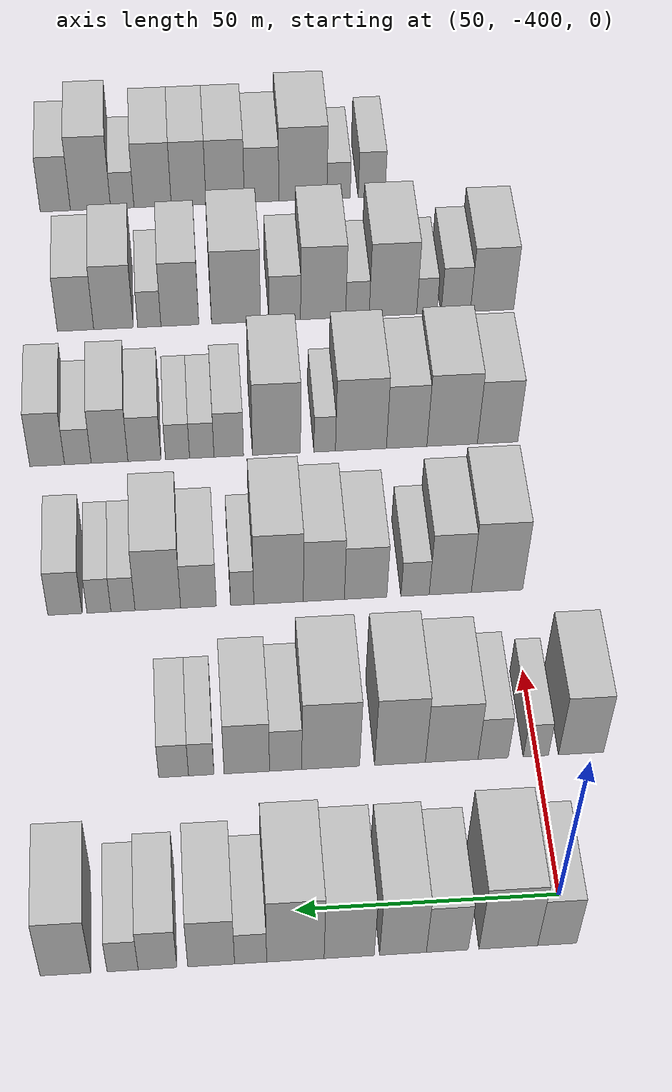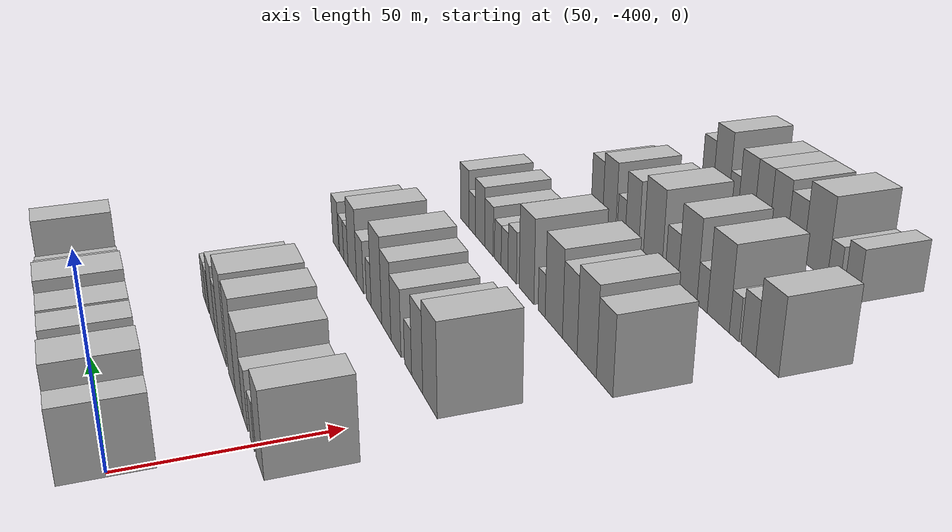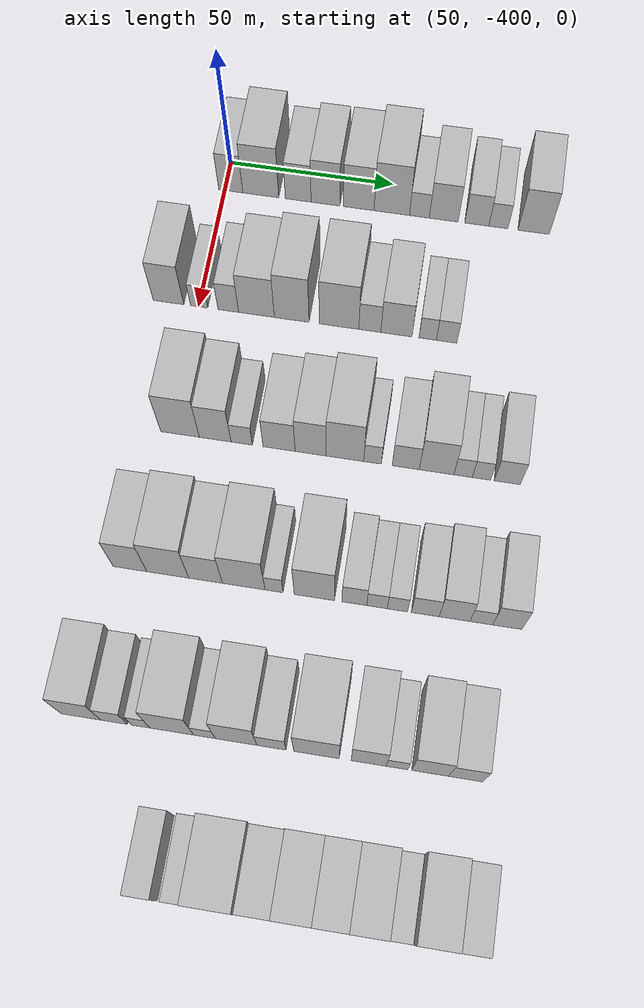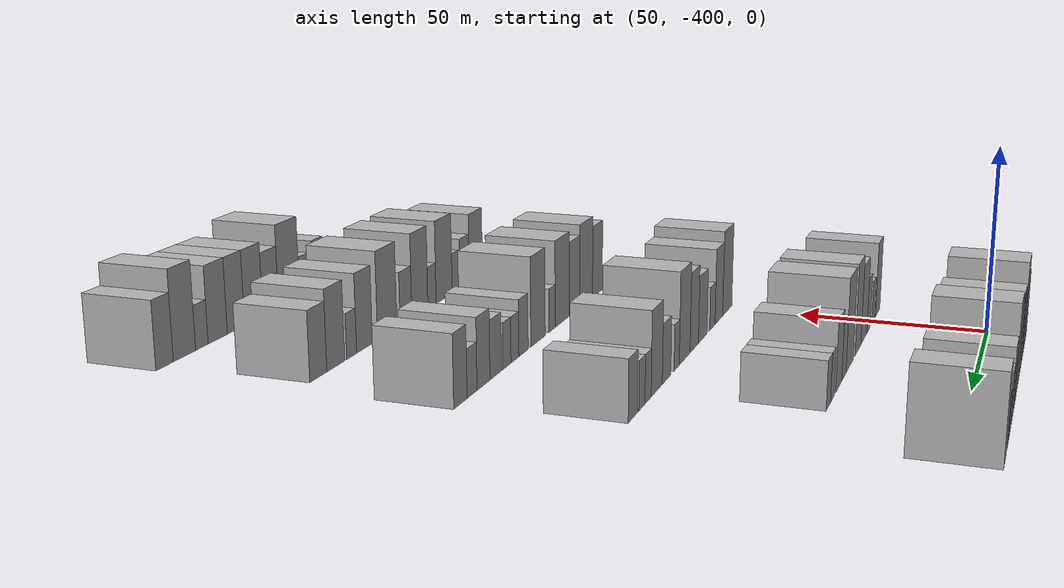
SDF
<sdf version="1.6">
 <world name="default">
  <model name="building_27">
   <static>1</static>
   <pose>50.0000 -398.0976 0 0.000000 0.000000 0.000000</pose>
   <link name="link">
    <pose>0 0 9.00 0 0 0</pose>
    <collision name="collision"><geometry><box><size>20.0000 7.3101 18.0000</size></box></geometry></collision>
    <visual name="visual">
     <cast_shadows>0</cast_shadows>
     <geometry><box><size>20.0000 7.3101 18.0000</size></box></geometry>
     <material>
      <script>
       <uri>model://HANNAS_wall/materials/scripts</uri>
       <uri>model://HANNAS_wall/materials/textures</uri>
       <name>vrc/HANNAS_wall</name>
      </script>
     </material>
    </visual>
   </link>
  </model>
  <model name="building_28">
   <static>1</static>
   <pose>50.0000 -388.9482 0 0.000000 0.000000 0.000000</pose>
   <link name="link">
    <pose>0 0 12.00 0 0 0</pose>
    <collision name="collision"><geometry><box><size>20.0000 10.9887 24.0000</size></box></geometry></collision>
    <visual name="visual">
     <cast_shadows>0</cast_shadows>
     <geometry><box><size>20.0000 10.9887 24.0000</size></box></geometry>
     <material>
      <script>
       <uri>model://HANNAS_wall/materials/scripts</uri>
       <uri>model://HANNAS_wall/materials/textures</uri>
       <name>vrc/HANNAS_wall</name>
      </script>
     </material>
    </visual>
   </link>
  </model>
  <model name="building_29">
   <static>1</static>
   <pose>50.0000 -377.5386 0 0.000000 0.000000 0.000000</pose>
   <link name="link">
    <pose>0 0 9.00 0 0 0</pose>
    <collision name="collision"><geometry><box><size>20.0000 7.8305 18.0000</size></box></geometry></collision>
    <visual name="visual">
     <cast_shadows>0</cast_shadows>
     <geometry><box><size>20.0000 7.8305 18.0000</size></box></geometry>
     <material>
      <script>
       <uri>model://HANNAS_wall/materials/scripts</uri>
       <uri>model://HANNAS_wall/materials/textures</uri>
       <name>vrc/HANNAS_wall</name>
      </script>
     </material>
    </visual>
   </link>
  </model>
  <model name="building_30">
   <static>1</static>
   <pose>50.0000 -369.2636 0 0.000000 0.000000 0.000000</pose>
   <link name="link">
    <pose>0 0 10.50 0 0 0</pose>
    <collision name="collision"><geometry><box><size>20.0000 8.7196 21.0000</size></box></geometry></collision>
    <visual name="visual">
     <cast_shadows>0</cast_shadows>
     <geometry><box><size>20.0000 8.7196 21.0000</size></box></geometry>
     <material>
      <script>
       <uri>model://HANNAS_wall/materials/scripts</uri>
       <uri>model://HANNAS_wall/materials/textures</uri>
       <name>vrc/HANNAS_wall</name>
      </script>
     </material>
    </visual>
   </link>
  </model>
  <model name="building_31">
   <static>1</static>
   <pose>50.0000 -359.2427 0 0.000000 0.000000 0.000000</pose>
   <link name="link">
    <pose>0 0 10.50 0 0 0</pose>
    <collision name="collision"><geometry><box><size>20.0000 9.3222 21.0000</size></box></geometry></collision>
    <visual name="visual">
     <cast_shadows>0</cast_shadows>
     <geometry><box><size>20.0000 9.3222 21.0000</size></box></geometry>
     <material>
      <script>
       <uri>model://HANNAS_wall/materials/scripts</uri>
       <uri>model://HANNAS_wall/materials/textures</uri>
       <name>vrc/HANNAS_wall</name>
      </script>
     </material>
    </visual>
   </link>
  </model>
  <model name="building_32">
   <static>1</static>
   <pose>50.0000 -349.2509 0 0.000000 0.000000 0.000000</pose>
   <link name="link">
    <pose>0 0 12.00 0 0 0</pose>
    <collision name="collision"><geometry><box><size>20.0000 10.6614 24.0000</size></box></geometry></collision>
    <visual name="visual">
     <cast_shadows>0</cast_shadows>
     <geometry><box><size>20.0000 10.6614 24.0000</size></box></geometry>
     <material>
      <script>
       <uri>model://HANNAS_wall/materials/scripts</uri>
       <uri>model://HANNAS_wall/materials/textures</uri>
       <name>vrc/HANNAS_wall</name>
      </script>
     </material>
    </visual>
   </link>
  </model>
  <model name="building_33">
   <static>1</static>
   <pose>50.0000 -340.9512 0 0.000000 0.000000 0.000000</pose>
   <link name="link">
    <pose>0 0 6.00 0 0 0</pose>
    <collision name="collision"><geometry><box><size>20.0000 5.9378 12.0000</size></box></geometry></collision>
    <visual name="visual">
     <cast_shadows>0</cast_shadows>
     <geometry><box><size>20.0000 5.9378 12.0000</size></box></geometry>
     <material>
      <script>
       <uri>model://HANNAS_wall/materials/scripts</uri>
       <uri>model://HANNAS_wall/materials/textures</uri>
       <name>vrc/HANNAS_wall</name>
      </script>
     </material>
    </visual>
   </link>
  </model>
  <model name="building_34">
   <static>1</static>
   <pose>50.0000 -333.6593 0 0.000000 0.000000 0.000000</pose>
   <link name="link">
    <pose>0 0 9.00 0 0 0</pose>
    <collision name="collision"><geometry><box><size>20.0000 8.6461 18.0000</size></box></geometry></collision>
    <visual name="visual">
     <cast_shadows>0</cast_shadows>
     <geometry><box><size>20.0000 8.6461 18.0000</size></box></geometry>
     <material>
      <script>
       <uri>model://HANNAS_wall/materials/scripts</uri>
       <uri>model://HANNAS_wall/materials/textures</uri>
       <name>vrc/HANNAS_wall</name>
      </script>
     </material>
    </visual>
   </link>
  </model>
  <model name="building_35">
   <static>1</static>
   <pose>50.0000 -323.7536 0 0.000000 0.000000 0.000000</pose>
   <link name="link">
    <pose>0 0 7.50 0 0 0</pose>
    <collision name="collision"><geometry><box><size>20.0000 7.1653 15.0000</size></box></geometry></collision>
    <visual name="visual">
     <cast_shadows>0</cast_shadows>
     <geometry><box><size>20.0000 7.1653 15.0000</size></box></geometry>
     <material>
      <script>
       <uri>model://HANNAS_wall/materials/scripts</uri>
       <uri>model://HANNAS_wall/materials/textures</uri>
       <name>vrc/HANNAS_wall</name>
      </script>
     </material>
    </visual>
   </link>
  </model>
  <model name="building_36">
   <static>1</static>
   <pose>50.0000 -317.3098 0 0.000000 0.000000 0.000000</pose>
   <link name="link">
    <pose>0 0 6.00 0 0 0</pose>
    <collision name="collision"><geometry><box><size>20.0000 5.7222 12.0000</size></box></geometry></collision>
    <visual name="visual">
     <cast_shadows>0</cast_shadows>
     <geometry><box><size>20.0000 5.7222 12.0000</size></box></geometry>
     <material>
      <script>
       <uri>model://HANNAS_wall/materials/scripts</uri>
       <uri>model://HANNAS_wall/materials/textures</uri>
       <name>vrc/HANNAS_wall</name>
      </script>
     </material>
    </visual>
   </link>
  </model>
  <model name="building_37">
   <static>1</static>
   <pose>50.0000 -306.7887 0 0.000000 0.000000 0.000000</pose>
   <link name="link">
    <pose>0 0 10.50 0 0 0</pose>
    <collision name="collision"><geometry><box><size>20.0000 9.3200 21.0000</size></box></geometry></collision>
    <visual name="visual">
     <cast_shadows>0</cast_shadows>
     <geometry><box><size>20.0000 9.3200 21.0000</size></box></geometry>
     <material>
      <script>
       <uri>model://HANNAS_wall/materials/scripts</uri>
       <uri>model://HANNAS_wall/materials/textures</uri>
       <name>vrc/HANNAS_wall</name>
      </script>
     </material>
    </visual>
   </link>
  </model>
  <model name="building_169">
   <static>1</static>
   <pose>90.0000 -408.8623 0 0.000000 0.000000 0.000000</pose>
   <link name="link">
    <pose>0 0 10.50 0 0 0</pose>
    <collision name="collision"><geometry><box><size>20.0000 9.0377 21.0000</size></box></geometry></collision>
    <visual name="visual">
     <cast_shadows>0</cast_shadows>
     <geometry><box><size>20.0000 9.0377 21.0000</size></box></geometry>
     <material>
      <script>
       <uri>model://HANNAS_wall/materials/scripts</uri>
       <uri>model://HANNAS_wall/materials/textures</uri>
       <name>vrc/HANNAS_wall</name>
      </script>
     </material>
    </visual>
   </link>
  </model>
  <model name="building_170">
   <static>1</static>
   <pose>90.0000 -399.8133 0 0.000000 0.000000 0.000000</pose>
   <link name="link">
    <pose>0 0 6.00 0 0 0</pose>
    <collision name="collision"><geometry><box><size>20.0000 5.0603 12.0000</size></box></geometry></collision>
    <visual name="visual">
     <cast_shadows>0</cast_shadows>
     <geometry><box><size>20.0000 5.0603 12.0000</size></box></geometry>
     <material>
      <script>
       <uri>model://HANNAS_wall/materials/scripts</uri>
       <uri>model://HANNAS_wall/materials/textures</uri>
       <name>vrc/HANNAS_wall</name>
      </script>
     </material>
    </visual>
   </link>
  </model>
  <model name="building_171">
   <static>1</static>
   <pose>90.0000 -391.2618 0 0.000000 0.000000 0.000000</pose>
   <link name="link">
    <pose>0 0 7.50 0 0 0</pose>
    <collision name="collision"><geometry><box><size>20.0000 6.0428 15.0000</size></box></geometry></collision>
    <visual name="visual">
     <cast_shadows>0</cast_shadows>
     <geometry><box><size>20.0000 6.0428 15.0000</size></box></geometry>
     <material>
      <script>
       <uri>model://HANNAS_wall/materials/scripts</uri>
       <uri>model://HANNAS_wall/materials/textures</uri>
       <name>vrc/HANNAS_wall</name>
      </script>
     </material>
    </visual>
   </link>
  </model>
  <model name="building_172">
   <static>1</static>
   <pose>90.0000 -382.9959 0 0.000000 0.000000 0.000000</pose>
   <link name="link">
    <pose>0 0 10.50 0 0 0</pose>
    <collision name="collision"><geometry><box><size>20.0000 10.4890 21.0000</size></box></geometry></collision>
    <visual name="visual">
     <cast_shadows>0</cast_shadows>
     <geometry><box><size>20.0000 10.4890 21.0000</size></box></geometry>
     <material>
      <script>
       <uri>model://HANNAS_wall/materials/scripts</uri>
       <uri>model://HANNAS_wall/materials/textures</uri>
       <name>vrc/HANNAS_wall</name>
      </script>
     </material>
    </visual>
   </link>
  </model>
  <model name="building_173">
   <static>1</static>
   <pose>90.0000 -372.7026 0 0.000000 0.000000 0.000000</pose>
   <link name="link">
    <pose>0 0 12.00 0 0 0</pose>
    <collision name="collision"><geometry><box><size>20.0000 10.0975 24.0000</size></box></geometry></collision>
    <visual name="visual">
     <cast_shadows>0</cast_shadows>
     <geometry><box><size>20.0000 10.0975 24.0000</size></box></geometry>
     <material>
      <script>
       <uri>model://HANNAS_wall/materials/scripts</uri>
       <uri>model://HANNAS_wall/materials/textures</uri>
       <name>vrc/HANNAS_wall</name>
      </script>
     </material>
    </visual>
   </link>
  </model>
  <model name="building_174">
   <static>1</static>
   <pose>90.0000 -358.9233 0 0.000000 0.000000 0.000000</pose>
   <link name="link">
    <pose>0 0 12.00 0 0 0</pose>
    <collision name="collision"><geometry><box><size>20.0000 11.4611 24.0000</size></box></geometry></collision>
    <visual name="visual">
     <cast_shadows>0</cast_shadows>
     <geometry><box><size>20.0000 11.4611 24.0000</size></box></geometry>
     <material>
      <script>
       <uri>model://HANNAS_wall/materials/scripts</uri>
       <uri>model://HANNAS_wall/materials/textures</uri>
       <name>vrc/HANNAS_wall</name>
      </script>
     </material>
    </visual>
   </link>
  </model>
  <model name="building_175">
   <static>1</static>
   <pose>90.0000 -349.9924 0 0.000000 0.000000 0.000000</pose>
   <link name="link">
    <pose>0 0 7.50 0 0 0</pose>
    <collision name="collision"><geometry><box><size>20.0000 6.4006 15.0000</size></box></geometry></collision>
    <visual name="visual">
     <cast_shadows>0</cast_shadows>
     <geometry><box><size>20.0000 6.4006 15.0000</size></box></geometry>
     <material>
      <script>
       <uri>model://HANNAS_wall/materials/scripts</uri>
       <uri>model://HANNAS_wall/materials/textures</uri>
       <name>vrc/HANNAS_wall</name>
      </script>
     </material>
    </visual>
   </link>
  </model>
  <model name="building_176">
   <static>1</static>
   <pose>90.0000 -342.3059 0 0.000000 0.000000 0.000000</pose>
   <link name="link">
    <pose>0 0 9.00 0 0 0</pose>
    <collision name="collision"><geometry><box><size>20.0000 8.9725 18.0000</size></box></geometry></collision>
    <visual name="visual">
     <cast_shadows>0</cast_shadows>
     <geometry><box><size>20.0000 8.9725 18.0000</size></box></geometry>
     <material>
      <script>
       <uri>model://HANNAS_wall/materials/scripts</uri>
       <uri>model://HANNAS_wall/materials/textures</uri>
       <name>vrc/HANNAS_wall</name>
      </script>
     </material>
    </visual>
   </link>
  </model>
  <model name="building_177">
   <static>1</static>
   <pose>90.0000 -333.3131 0 0.000000 0.000000 0.000000</pose>
   <link name="link">
    <pose>0 0 6.00 0 0 0</pose>
    <collision name="collision"><geometry><box><size>20.0000 5.0131 12.0000</size></box></geometry></collision>
    <visual name="visual">
     <cast_shadows>0</cast_shadows>
     <geometry><box><size>20.0000 5.0131 12.0000</size></box></geometry>
     <material>
      <script>
       <uri>model://HANNAS_wall/materials/scripts</uri>
       <uri>model://HANNAS_wall/materials/textures</uri>
       <name>vrc/HANNAS_wall</name>
      </script>
     </material>
    </visual>
   </link>
  </model>
  <model name="building_178">
   <static>1</static>
   <pose>90.0000 -327.8650 0 0.000000 0.000000 0.000000</pose>
   <link name="link">
    <pose>0 0 6.00 0 0 0</pose>
    <collision name="collision"><geometry><box><size>20.0000 5.8831 12.0000</size></box></geometry></collision>
    <visual name="visual">
     <cast_shadows>0</cast_shadows>
     <geometry><box><size>20.0000 5.8831 12.0000</size></box></geometry>
     <material>
      <script>
       <uri>model://HANNAS_wall/materials/scripts</uri>
       <uri>model://HANNAS_wall/materials/textures</uri>
       <name>vrc/HANNAS_wall</name>
      </script>
     </material>
    </visual>
   </link>
  </model>
  <model name="building_306">
   <static>1</static>
   <pose>130.0000 -397.2481 0 0.000000 0.000000 0.000000</pose>
   <link name="link">
    <pose>0 0 12.00 0 0 0</pose>
    <collision name="collision"><geometry><box><size>20.0000 10.9089 24.0000</size></box></geometry></collision>
    <visual name="visual">
     <cast_shadows>0</cast_shadows>
     <geometry><box><size>20.0000 10.9089 24.0000</size></box></geometry>
     <material>
      <script>
       <uri>model://HANNAS_wall/materials/scripts</uri>
       <uri>model://HANNAS_wall/materials/textures</uri>
       <name>vrc/HANNAS_wall</name>
      </script>
     </material>
    </visual>
   </link>
  </model>
  <model name="building_307">
   <static>1</static>
   <pose>130.0000 -387.3245 0 0.000000 0.000000 0.000000</pose>
   <link name="link">
    <pose>0 0 10.50 0 0 0</pose>
    <collision name="collision"><geometry><box><size>20.0000 8.9382 21.0000</size></box></geometry></collision>
    <visual name="visual">
     <cast_shadows>0</cast_shadows>
     <geometry><box><size>20.0000 8.9382 21.0000</size></box></geometry>
     <material>
      <script>
       <uri>model://HANNAS_wall/materials/scripts</uri>
       <uri>model://HANNAS_wall/materials/textures</uri>
       <name>vrc/HANNAS_wall</name>
      </script>
     </material>
    </visual>
   </link>
  </model>
  <model name="building_308">
   <static>1</static>
   <pose>130.0000 -379.8751 0 0.000000 0.000000 0.000000</pose>
   <link name="link">
    <pose>0 0 6.00 0 0 0</pose>
    <collision name="collision"><geometry><box><size>20.0000 5.9608 12.0000</size></box></geometry></collision>
    <visual name="visual">
     <cast_shadows>0</cast_shadows>
     <geometry><box><size>20.0000 5.9608 12.0000</size></box></geometry>
     <material>
      <script>
       <uri>model://HANNAS_wall/materials/scripts</uri>
       <uri>model://HANNAS_wall/materials/textures</uri>
       <name>vrc/HANNAS_wall</name>
      </script>
     </material>
    </visual>
   </link>
  </model>
  <model name="building_309">
   <static>1</static>
   <pose>130.0000 -369.4111 0 0.000000 0.000000 0.000000</pose>
   <link name="link">
    <pose>0 0 9.00 0 0 0</pose>
    <collision name="collision"><geometry><box><size>20.0000 8.9671 18.0000</size></box></geometry></collision>
    <visual name="visual">
     <cast_shadows>0</cast_shadows>
     <geometry><box><size>20.0000 8.9671 18.0000</size></box></geometry>
     <material>
      <script>
       <uri>model://HANNAS_wall/materials/scripts</uri>
       <uri>model://HANNAS_wall/materials/textures</uri>
       <name>vrc/HANNAS_wall</name>
      </script>
     </material>
    </visual>
   </link>
  </model>
  <model name="building_310">
   <static>1</static>
   <pose>130.0000 -360.5963 0 0.000000 0.000000 0.000000</pose>
   <link name="link">
    <pose>0 0 10.50 0 0 0</pose>
    <collision name="collision"><geometry><box><size>20.0000 8.6624 21.0000</size></box></geometry></collision>
    <visual name="visual">
     <cast_shadows>0</cast_shadows>
     <geometry><box><size>20.0000 8.6624 21.0000</size></box></geometry>
     <material>
      <script>
       <uri>model://HANNAS_wall/materials/scripts</uri>
       <uri>model://HANNAS_wall/materials/textures</uri>
       <name>vrc/HANNAS_wall</name>
      </script>
     </material>
    </visual>
   </link>
  </model>
  <model name="building_311">
   <static>1</static>
   <pose>130.0000 -351.0551 0 0.000000 0.000000 0.000000</pose>
   <link name="link">
    <pose>0 0 12.00 0 0 0</pose>
    <collision name="collision"><geometry><box><size>20.0000 10.4200 24.0000</size></box></geometry></collision>
    <visual name="visual">
     <cast_shadows>0</cast_shadows>
     <geometry><box><size>20.0000 10.4200 24.0000</size></box></geometry>
     <material>
      <script>
       <uri>model://HANNAS_wall/materials/scripts</uri>
       <uri>model://HANNAS_wall/materials/textures</uri>
       <name>vrc/HANNAS_wall</name>
      </script>
     </material>
    </visual>
   </link>
  </model>
  <model name="building_312">
   <static>1</static>
   <pose>130.0000 -343.4131 0 0.000000 0.000000 0.000000</pose>
   <link name="link">
    <pose>0 0 6.00 0 0 0</pose>
    <collision name="collision"><geometry><box><size>20.0000 4.8642 12.0000</size></box></geometry></collision>
    <visual name="visual">
     <cast_shadows>0</cast_shadows>
     <geometry><box><size>20.0000 4.8642 12.0000</size></box></geometry>
     <material>
      <script>
       <uri>model://HANNAS_wall/materials/scripts</uri>
       <uri>model://HANNAS_wall/materials/textures</uri>
       <name>vrc/HANNAS_wall</name>
      </script>
     </material>
    </visual>
   </link>
  </model>
  <model name="building_313">
   <static>1</static>
   <pose>130.0000 -334.2361 0 0.000000 0.000000 0.000000</pose>
   <link name="link">
    <pose>0 0 7.50 0 0 0</pose>
    <collision name="collision"><geometry><box><size>20.0000 7.4897 15.0000</size></box></geometry></collision>
    <visual name="visual">
     <cast_shadows>0</cast_shadows>
     <geometry><box><size>20.0000 7.4897 15.0000</size></box></geometry>
     <material>
      <script>
       <uri>model://HANNAS_wall/materials/scripts</uri>
       <uri>model://HANNAS_wall/materials/textures</uri>
       <name>vrc/HANNAS_wall</name>
      </script>
     </material>
    </visual>
   </link>
  </model>
  <model name="building_314">
   <static>1</static>
   <pose>130.0000 -325.7147 0 0.000000 0.000000 0.000000</pose>
   <link name="link">
    <pose>0 0 10.50 0 0 0</pose>
    <collision name="collision"><geometry><box><size>20.0000 9.5531 21.0000</size></box></geometry></collision>
    <visual name="visual">
     <cast_shadows>0</cast_shadows>
     <geometry><box><size>20.0000 9.5531 21.0000</size></box></geometry>
     <material>
      <script>
       <uri>model://HANNAS_wall/materials/scripts</uri>
       <uri>model://HANNAS_wall/materials/textures</uri>
       <name>vrc/HANNAS_wall</name>
      </script>
     </material>
    </visual>
   </link>
  </model>
  <model name="building_315">
   <static>1</static>
   <pose>130.0000 -318.4172 0 0.000000 0.000000 0.000000</pose>
   <link name="link">
    <pose>0 0 6.00 0 0 0</pose>
    <collision name="collision"><geometry><box><size>20.0000 5.0419 12.0000</size></box></geometry></collision>
    <visual name="visual">
     <cast_shadows>0</cast_shadows>
     <geometry><box><size>20.0000 5.0419 12.0000</size></box></geometry>
     <material>
      <script>
       <uri>model://HANNAS_wall/materials/scripts</uri>
       <uri>model://HANNAS_wall/materials/textures</uri>
       <name>vrc/HANNAS_wall</name>
      </script>
     </material>
    </visual>
   </link>
  </model>
  <model name="building_316">
   <static>1</static>
   <pose>130.0000 -313.3897 0 0.000000 0.000000 0.000000</pose>
   <link name="link">
    <pose>0 0 6.00 0 0 0</pose>
    <collision name="collision"><geometry><box><size>20.0000 5.0132 12.0000</size></box></geometry></collision>
    <visual name="visual">
     <cast_shadows>0</cast_shadows>
     <geometry><box><size>20.0000 5.0132 12.0000</size></box></geometry>
     <material>
      <script>
       <uri>model://HANNAS_wall/materials/scripts</uri>
       <uri>model://HANNAS_wall/materials/textures</uri>
       <name>vrc/HANNAS_wall</name>
      </script>
     </material>
    </visual>
   </link>
  </model>
  <model name="building_317">
   <static>1</static>
   <pose>130.0000 -306.3028 0 0.000000 0.000000 0.000000</pose>
   <link name="link">
    <pose>0 0 7.50 0 0 0</pose>
    <collision name="collision"><geometry><box><size>20.0000 7.1605 15.0000</size></box></geometry></collision>
    <visual name="visual">
     <cast_shadows>0</cast_shadows>
     <geometry><box><size>20.0000 7.1605 15.0000</size></box></geometry>
     <material>
      <script>
       <uri>model://HANNAS_wall/materials/scripts</uri>
       <uri>model://HANNAS_wall/materials/textures</uri>
       <name>vrc/HANNAS_wall</name>
      </script>
     </material>
    </visual>
   </link>
  </model>
  <model name="building_444">
   <static>1</static>
   <pose>170.0000 -402.5948 0 0.000000 0.000000 0.000000</pose>
   <link name="link">
    <pose>0 0 10.50 0 0 0</pose>
    <collision name="collision"><geometry><box><size>20.0000 9.1106 21.0000</size></box></geometry></collision>
    <visual name="visual">
     <cast_shadows>0</cast_shadows>
     <geometry><box><size>20.0000 9.1106 21.0000</size></box></geometry>
     <material>
      <script>
       <uri>model://HANNAS_wall/materials/scripts</uri>
       <uri>model://HANNAS_wall/materials/textures</uri>
       <name>vrc/HANNAS_wall</name>
      </script>
     </material>
    </visual>
   </link>
  </model>
  <model name="building_445">
   <static>1</static>
   <pose>170.0000 -392.3725 0 0.000000 0.000000 0.000000</pose>
   <link name="link">
    <pose>0 0 12.00 0 0 0</pose>
    <collision name="collision"><geometry><box><size>20.0000 11.3341 24.0000</size></box></geometry></collision>
    <visual name="visual">
     <cast_shadows>0</cast_shadows>
     <geometry><box><size>20.0000 11.3341 24.0000</size></box></geometry>
     <material>
      <script>
       <uri>model://HANNAS_wall/materials/scripts</uri>
       <uri>model://HANNAS_wall/materials/textures</uri>
       <name>vrc/HANNAS_wall</name>
      </script>
     </material>
    </visual>
   </link>
  </model>
  <model name="building_446">
   <static>1</static>
   <pose>170.0000 -382.1659 0 0.000000 0.000000 0.000000</pose>
   <link name="link">
    <pose>0 0 10.50 0 0 0</pose>
    <collision name="collision"><geometry><box><size>20.0000 9.0791 21.0000</size></box></geometry></collision>
    <visual name="visual">
     <cast_shadows>0</cast_shadows>
     <geometry><box><size>20.0000 9.0791 21.0000</size></box></geometry>
     <material>
      <script>
       <uri>model://HANNAS_wall/materials/scripts</uri>
       <uri>model://HANNAS_wall/materials/textures</uri>
       <name>vrc/HANNAS_wall</name>
      </script>
     </material>
    </visual>
   </link>
  </model>
  <model name="building_447">
   <static>1</static>
   <pose>170.0000 -371.9200 0 0.000000 0.000000 0.000000</pose>
   <link name="link">
    <pose>0 0 12.00 0 0 0</pose>
    <collision name="collision"><geometry><box><size>20.0000 11.4127 24.0000</size></box></geometry></collision>
    <visual name="visual">
     <cast_shadows>0</cast_shadows>
     <geometry><box><size>20.0000 11.4127 24.0000</size></box></geometry>
     <material>
      <script>
       <uri>model://HANNAS_wall/materials/scripts</uri>
       <uri>model://HANNAS_wall/materials/textures</uri>
       <name>vrc/HANNAS_wall</name>
      </script>
     </material>
    </visual>
   </link>
  </model>
  <model name="building_448">
   <static>1</static>
   <pose>170.0000 -363.8134 0 0.000000 0.000000 0.000000</pose>
   <link name="link">
    <pose>0 0 6.00 0 0 0</pose>
    <collision name="collision"><geometry><box><size>20.0000 4.8006 12.0000</size></box></geometry></collision>
    <visual name="visual">
     <cast_shadows>0</cast_shadows>
     <geometry><box><size>20.0000 4.8006 12.0000</size></box></geometry>
     <material>
      <script>
       <uri>model://HANNAS_wall/materials/scripts</uri>
       <uri>model://HANNAS_wall/materials/textures</uri>
       <name>vrc/HANNAS_wall</name>
      </script>
     </material>
    </visual>
   </link>
  </model>
  <model name="building_449">
   <static>1</static>
   <pose>170.0000 -353.0618 0 0.000000 0.000000 0.000000</pose>
   <link name="link">
    <pose>0 0 12.00 0 0 0</pose>
    <collision name="collision"><geometry><box><size>20.0000 10.7026 24.0000</size></box></geometry></collision>
    <visual name="visual">
     <cast_shadows>0</cast_shadows>
     <geometry><box><size>20.0000 10.7026 24.0000</size></box></geometry>
     <material>
      <script>
       <uri>model://HANNAS_wall/materials/scripts</uri>
       <uri>model://HANNAS_wall/materials/textures</uri>
       <name>vrc/HANNAS_wall</name>
      </script>
     </material>
    </visual>
   </link>
  </model>
  <model name="building_450">
   <static>1</static>
   <pose>170.0000 -342.4193 0 0.000000 0.000000 0.000000</pose>
   <link name="link">
    <pose>0 0 7.50 0 0 0</pose>
    <collision name="collision"><geometry><box><size>20.0000 6.5823 15.0000</size></box></geometry></collision>
    <visual name="visual">
     <cast_shadows>0</cast_shadows>
     <geometry><box><size>20.0000 6.5823 15.0000</size></box></geometry>
     <material>
      <script>
       <uri>model://HANNAS_wall/materials/scripts</uri>
       <uri>model://HANNAS_wall/materials/textures</uri>
       <name>vrc/HANNAS_wall</name>
      </script>
     </material>
    </visual>
   </link>
  </model>
  <model name="building_451">
   <static>1</static>
   <pose>170.0000 -336.4174 0 0.000000 0.000000 0.000000</pose>
   <link name="link">
    <pose>0 0 6.00 0 0 0</pose>
    <collision name="collision"><geometry><box><size>20.0000 5.4215 12.0000</size></box></geometry></collision>
    <visual name="visual">
     <cast_shadows>0</cast_shadows>
     <geometry><box><size>20.0000 5.4215 12.0000</size></box></geometry>
     <material>
      <script>
       <uri>model://HANNAS_wall/materials/scripts</uri>
       <uri>model://HANNAS_wall/materials/textures</uri>
       <name>vrc/HANNAS_wall</name>
      </script>
     </material>
    </visual>
   </link>
  </model>
  <model name="building_452">
   <static>1</static>
   <pose>170.0000 -331.0300 0 0.000000 0.000000 0.000000</pose>
   <link name="link">
    <pose>0 0 6.00 0 0 0</pose>
    <collision name="collision"><geometry><box><size>20.0000 5.3534 12.0000</size></box></geometry></collision>
    <visual name="visual">
     <cast_shadows>0</cast_shadows>
     <geometry><box><size>20.0000 5.3534 12.0000</size></box></geometry>
     <material>
      <script>
       <uri>model://HANNAS_wall/materials/scripts</uri>
       <uri>model://HANNAS_wall/materials/textures</uri>
       <name>vrc/HANNAS_wall</name>
      </script>
     </material>
    </visual>
   </link>
  </model>
  <model name="building_453">
   <static>1</static>
   <pose>170.0000 -323.6869 0 0.000000 0.000000 0.000000</pose>
   <link name="link">
    <pose>0 0 7.50 0 0 0</pose>
    <collision name="collision"><geometry><box><size>20.0000 7.3328 15.0000</size></box></geometry></collision>
    <visual name="visual">
     <cast_shadows>0</cast_shadows>
     <geometry><box><size>20.0000 7.3328 15.0000</size></box></geometry>
     <material>
      <script>
       <uri>model://HANNAS_wall/materials/scripts</uri>
       <uri>model://HANNAS_wall/materials/textures</uri>
       <name>vrc/HANNAS_wall</name>
      </script>
     </material>
    </visual>
   </link>
  </model>
  <model name="building_454">
   <static>1</static>
   <pose>170.0000 -315.9573 0 0.000000 0.000000 0.000000</pose>
   <link name="link">
    <pose>0 0 9.00 0 0 0</pose>
    <collision name="collision"><geometry><box><size>20.0000 8.1264 18.0000</size></box></geometry></collision>
    <visual name="visual">
     <cast_shadows>0</cast_shadows>
     <geometry><box><size>20.0000 8.1264 18.0000</size></box></geometry>
     <material>
      <script>
       <uri>model://HANNAS_wall/materials/scripts</uri>
       <uri>model://HANNAS_wall/materials/textures</uri>
       <name>vrc/HANNAS_wall</name>
      </script>
     </material>
    </visual>
   </link>
  </model>
  <model name="building_455">
   <static>1</static>
   <pose>170.0000 -308.9433 0 0.000000 0.000000 0.000000</pose>
   <link name="link">
    <pose>0 0 6.00 0 0 0</pose>
    <collision name="collision"><geometry><box><size>20.0000 5.9016 12.0000</size></box></geometry></collision>
    <visual name="visual">
     <cast_shadows>0</cast_shadows>
     <geometry><box><size>20.0000 5.9016 12.0000</size></box></geometry>
     <material>
      <script>
       <uri>model://HANNAS_wall/materials/scripts</uri>
       <uri>model://HANNAS_wall/materials/textures</uri>
       <name>vrc/HANNAS_wall</name>
      </script>
     </material>
    </visual>
   </link>
  </model>
  <model name="building_456">
   <static>1</static>
   <pose>170.0000 -302.1447 0 0.000000 0.000000 0.000000</pose>
   <link name="link">
    <pose>0 0 9.00 0 0 0</pose>
    <collision name="collision"><geometry><box><size>20.0000 7.6956 18.0000</size></box></geometry></collision>
    <visual name="visual">
     <cast_shadows>0</cast_shadows>
     <geometry><box><size>20.0000 7.6956 18.0000</size></box></geometry>
     <material>
      <script>
       <uri>model://HANNAS_wall/materials/scripts</uri>
       <uri>model://HANNAS_wall/materials/textures</uri>
       <name>vrc/HANNAS_wall</name>
      </script>
     </material>
    </visual>
   </link>
  </model>
  <model name="building_572">
   <static>1</static>
   <pose>210.0000 -406.4962 0 0.000000 0.000000 0.000000</pose>
   <link name="link">
    <pose>0 0 10.50 0 0 0</pose>
    <collision name="collision"><geometry><box><size>20.0000 10.2900 21.0000</size></box></geometry></collision>
    <visual name="visual">
     <cast_shadows>0</cast_shadows>
     <geometry><box><size>20.0000 10.2900 21.0000</size></box></geometry>
     <material>
      <script>
       <uri>model://HANNAS_wall/materials/scripts</uri>
       <uri>model://HANNAS_wall/materials/textures</uri>
       <name>vrc/HANNAS_wall</name>
      </script>
     </material>
    </visual>
   </link>
  </model>
  <model name="building_573">
   <static>1</static>
   <pose>210.0000 -397.8858 0 0.000000 0.000000 0.000000</pose>
   <link name="link">
    <pose>0 0 7.50 0 0 0</pose>
    <collision name="collision"><geometry><box><size>20.0000 6.9307 15.0000</size></box></geometry></collision>
    <visual name="visual">
     <cast_shadows>0</cast_shadows>
     <geometry><box><size>20.0000 6.9307 15.0000</size></box></geometry>
     <material>
      <script>
       <uri>model://HANNAS_wall/materials/scripts</uri>
       <uri>model://HANNAS_wall/materials/textures</uri>
       <name>vrc/HANNAS_wall</name>
      </script>
     </material>
    </visual>
   </link>
  </model>
  <model name="building_574">
   <static>1</static>
   <pose>210.0000 -391.0123 0 0.000000 0.000000 0.000000</pose>
   <link name="link">
    <pose>0 0 6.00 0 0 0</pose>
    <collision name="collision"><geometry><box><size>20.0000 4.8164 12.0000</size></box></geometry></collision>
    <visual name="visual">
     <cast_shadows>0</cast_shadows>
     <geometry><box><size>20.0000 4.8164 12.0000</size></box></geometry>
     <material>
      <script>
       <uri>model://HANNAS_wall/materials/scripts</uri>
       <uri>model://HANNAS_wall/materials/textures</uri>
       <name>vrc/HANNAS_wall</name>
      </script>
     </material>
    </visual>
   </link>
  </model>
  <model name="building_575">
   <static>1</static>
   <pose>210.0000 -382.9763 0 0.000000 0.000000 0.000000</pose>
   <link name="link">
    <pose>0 0 12.00 0 0 0</pose>
    <collision name="collision"><geometry><box><size>20.0000 11.2555 24.0000</size></box></geometry></collision>
    <visual name="visual">
     <cast_shadows>0</cast_shadows>
     <geometry><box><size>20.0000 11.2555 24.0000</size></box></geometry>
     <material>
      <script>
       <uri>model://HANNAS_wall/materials/scripts</uri>
       <uri>model://HANNAS_wall/materials/textures</uri>
       <name>vrc/HANNAS_wall</name>
      </script>
     </material>
    </visual>
   </link>
  </model>
  <model name="building_576">
   <static>1</static>
   <pose>210.0000 -374.5770 0 0.000000 0.000000 0.000000</pose>
   <link name="link">
    <pose>0 0 6.00 0 0 0</pose>
    <collision name="collision"><geometry><box><size>20.0000 5.5431 12.0000</size></box></geometry></collision>
    <visual name="visual">
     <cast_shadows>0</cast_shadows>
     <geometry><box><size>20.0000 5.5431 12.0000</size></box></geometry>
     <material>
      <script>
       <uri>model://HANNAS_wall/materials/scripts</uri>
       <uri>model://HANNAS_wall/materials/textures</uri>
       <name>vrc/HANNAS_wall</name>
      </script>
     </material>
    </visual>
   </link>
  </model>
  <model name="building_577">
   <static>1</static>
   <pose>210.0000 -366.4827 0 0.000000 0.000000 0.000000</pose>
   <link name="link">
    <pose>0 0 12.00 0 0 0</pose>
    <collision name="collision"><geometry><box><size>20.0000 10.6455 24.0000</size></box></geometry></collision>
    <visual name="visual">
     <cast_shadows>0</cast_shadows>
     <geometry><box><size>20.0000 10.6455 24.0000</size></box></geometry>
     <material>
      <script>
       <uri>model://HANNAS_wall/materials/scripts</uri>
       <uri>model://HANNAS_wall/materials/textures</uri>
       <name>vrc/HANNAS_wall</name>
      </script>
     </material>
    </visual>
   </link>
  </model>
  <model name="building_578">
   <static>1</static>
   <pose>210.0000 -357.4455 0 0.000000 0.000000 0.000000</pose>
   <link name="link">
    <pose>0 0 7.50 0 0 0</pose>
    <collision name="collision"><geometry><box><size>20.0000 7.4289 15.0000</size></box></geometry></collision>
    <visual name="visual">
     <cast_shadows>0</cast_shadows>
     <geometry><box><size>20.0000 7.4289 15.0000</size></box></geometry>
     <material>
      <script>
       <uri>model://HANNAS_wall/materials/scripts</uri>
       <uri>model://HANNAS_wall/materials/textures</uri>
       <name>vrc/HANNAS_wall</name>
      </script>
     </material>
    </visual>
   </link>
  </model>
  <model name="building_579">
   <static>1</static>
   <pose>210.0000 -345.9768 0 0.000000 0.000000 0.000000</pose>
   <link name="link">
    <pose>0 0 12.00 0 0 0</pose>
    <collision name="collision"><geometry><box><size>20.0000 11.5086 24.0000</size></box></geometry></collision>
    <visual name="visual">
     <cast_shadows>0</cast_shadows>
     <geometry><box><size>20.0000 11.5086 24.0000</size></box></geometry>
     <material>
      <script>
       <uri>model://HANNAS_wall/materials/scripts</uri>
       <uri>model://HANNAS_wall/materials/textures</uri>
       <name>vrc/HANNAS_wall</name>
      </script>
     </material>
    </visual>
   </link>
  </model>
  <model name="building_580">
   <static>1</static>
   <pose>210.0000 -332.7795 0 0.000000 0.000000 0.000000</pose>
   <link name="link">
    <pose>0 0 10.50 0 0 0</pose>
    <collision name="collision"><geometry><box><size>20.0000 8.8860 21.0000</size></box></geometry></collision>
    <visual name="visual">
     <cast_shadows>0</cast_shadows>
     <geometry><box><size>20.0000 8.8860 21.0000</size></box></geometry>
     <material>
      <script>
       <uri>model://HANNAS_wall/materials/scripts</uri>
       <uri>model://HANNAS_wall/materials/textures</uri>
       <name>vrc/HANNAS_wall</name>
      </script>
     </material>
    </visual>
   </link>
  </model>
  <model name="building_581">
   <static>1</static>
   <pose>210.0000 -325.6138 0 0.000000 0.000000 0.000000</pose>
   <link name="link">
    <pose>0 0 6.00 0 0 0</pose>
    <collision name="collision"><geometry><box><size>20.0000 5.4454 12.0000</size></box></geometry></collision>
    <visual name="visual">
     <cast_shadows>0</cast_shadows>
     <geometry><box><size>20.0000 5.4454 12.0000</size></box></geometry>
     <material>
      <script>
       <uri>model://HANNAS_wall/materials/scripts</uri>
       <uri>model://HANNAS_wall/materials/textures</uri>
       <name>vrc/HANNAS_wall</name>
      </script>
     </material>
    </visual>
   </link>
  </model>
  <model name="building_582">
   <static>1</static>
   <pose>210.0000 -317.2427 0 0.000000 0.000000 0.000000</pose>
   <link name="link">
    <pose>0 0 10.50 0 0 0</pose>
    <collision name="collision"><geometry><box><size>20.0000 9.2969 21.0000</size></box></geometry></collision>
    <visual name="visual">
     <cast_shadows>0</cast_shadows>
     <geometry><box><size>20.0000 9.2969 21.0000</size></box></geometry>
     <material>
      <script>
       <uri>model://HANNAS_wall/materials/scripts</uri>
       <uri>model://HANNAS_wall/materials/textures</uri>
       <name>vrc/HANNAS_wall</name>
      </script>
     </material>
    </visual>
   </link>
  </model>
  <model name="building_583">
   <static>1</static>
   <pose>210.0000 -308.3418 0 0.000000 0.000000 0.000000</pose>
   <link name="link">
    <pose>0 0 9.00 0 0 0</pose>
    <collision name="collision"><geometry><box><size>20.0000 8.5048 18.0000</size></box></geometry></collision>
    <visual name="visual">
     <cast_shadows>0</cast_shadows>
     <geometry><box><size>20.0000 8.5048 18.0000</size></box></geometry>
     <material>
      <script>
       <uri>model://HANNAS_wall/materials/scripts</uri>
       <uri>model://HANNAS_wall/materials/textures</uri>
       <name>vrc/HANNAS_wall</name>
      </script>
     </material>
    </visual>
   </link>
  </model>
  <model name="building_711">
   <static>1</static>
   <pose>250.0000 -381.5702 0 0.000000 0.000000 0.000000</pose>
   <link name="link">
    <pose>0 0 7.50 0 0 0</pose>
    <collision name="collision"><geometry><box><size>20.0000 6.6588 15.0000</size></box></geometry></collision>
    <visual name="visual">
     <cast_shadows>0</cast_shadows>
     <geometry><box><size>20.0000 6.6588 15.0000</size></box></geometry>
     <material>
      <script>
       <uri>model://HANNAS_wall/materials/scripts</uri>
       <uri>model://HANNAS_wall/materials/textures</uri>
       <name>vrc/HANNAS_wall</name>
      </script>
     </material>
    </visual>
   </link>
  </model>
  <model name="building_712">
   <static>1</static>
   <pose>250.0000 -373.3294 0 0.000000 0.000000 0.000000</pose>
   <link name="link">
    <pose>0 0 6.00 0 0 0</pose>
    <collision name="collision"><geometry><box><size>20.0000 5.8227 12.0000</size></box></geometry></collision>
    <visual name="visual">
     <cast_shadows>0</cast_shadows>
     <geometry><box><size>20.0000 5.8227 12.0000</size></box></geometry>
     <material>
      <script>
       <uri>model://HANNAS_wall/materials/scripts</uri>
       <uri>model://HANNAS_wall/materials/textures</uri>
       <name>vrc/HANNAS_wall</name>
      </script>
     </material>
    </visual>
   </link>
  </model>
  <model name="building_713">
   <static>1</static>
   <pose>250.0000 -364.4496 0 0.000000 0.000000 0.000000</pose>
   <link name="link">
    <pose>0 0 12.00 0 0 0</pose>
    <collision name="collision"><geometry><box><size>20.0000 11.9369 24.0000</size></box></geometry></collision>
    <visual name="visual">
     <cast_shadows>0</cast_shadows>
     <geometry><box><size>20.0000 11.9369 24.0000</size></box></geometry>
     <material>
      <script>
       <uri>model://HANNAS_wall/materials/scripts</uri>
       <uri>model://HANNAS_wall/materials/textures</uri>
       <name>vrc/HANNAS_wall</name>
      </script>
     </material>
    </visual>
   </link>
  </model>
  <model name="building_714">
   <static>1</static>
   <pose>250.0000 -354.2081 0 0.000000 0.000000 0.000000</pose>
   <link name="link">
    <pose>0 0 9.00 0 0 0</pose>
    <collision name="collision"><geometry><box><size>20.0000 8.5462 18.0000</size></box></geometry></collision>
    <visual name="visual">
     <cast_shadows>0</cast_shadows>
     <geometry><box><size>20.0000 8.5462 18.0000</size></box></geometry>
     <material>
      <script>
       <uri>model://HANNAS_wall/materials/scripts</uri>
       <uri>model://HANNAS_wall/materials/textures</uri>
       <name>vrc/HANNAS_wall</name>
      </script>
     </material>
    </visual>
   </link>
  </model>
  <model name="building_715">
   <static>1</static>
   <pose>250.0000 -345.1980 0 0.000000 0.000000 0.000000</pose>
   <link name="link">
    <pose>0 0 10.50 0 0 0</pose>
    <collision name="collision"><geometry><box><size>20.0000 9.4739 21.0000</size></box></geometry></collision>
    <visual name="visual">
     <cast_shadows>0</cast_shadows>
     <geometry><box><size>20.0000 9.4739 21.0000</size></box></geometry>
     <material>
      <script>
       <uri>model://HANNAS_wall/materials/scripts</uri>
       <uri>model://HANNAS_wall/materials/textures</uri>
       <name>vrc/HANNAS_wall</name>
      </script>
     </material>
    </visual>
   </link>
  </model>
  <model name="building_716">
   <static>1</static>
   <pose>250.0000 -336.1735 0 0.000000 0.000000 0.000000</pose>
   <link name="link">
    <pose>0 0 10.50 0 0 0</pose>
    <collision name="collision"><geometry><box><size>20.0000 8.5753 21.0000</size></box></geometry></collision>
    <visual name="visual">
     <cast_shadows>0</cast_shadows>
     <geometry><box><size>20.0000 8.5753 21.0000</size></box></geometry>
     <material>
      <script>
       <uri>model://HANNAS_wall/materials/scripts</uri>
       <uri>model://HANNAS_wall/materials/textures</uri>
       <name>vrc/HANNAS_wall</name>
      </script>
     </material>
    </visual>
   </link>
  </model>
  <model name="building_717">
   <static>1</static>
   <pose>250.0000 -327.2786 0 0.000000 0.000000 0.000000</pose>
   <link name="link">
    <pose>0 0 10.50 0 0 0</pose>
    <collision name="collision"><geometry><box><size>20.0000 9.2144 21.0000</size></box></geometry></collision>
    <visual name="visual">
     <cast_shadows>0</cast_shadows>
     <geometry><box><size>20.0000 9.2144 21.0000</size></box></geometry>
     <material>
      <script>
       <uri>model://HANNAS_wall/materials/scripts</uri>
       <uri>model://HANNAS_wall/materials/textures</uri>
       <name>vrc/HANNAS_wall</name>
      </script>
     </material>
    </visual>
   </link>
  </model>
  <model name="building_718">
   <static>1</static>
   <pose>250.0000 -319.7896 0 0.000000 0.000000 0.000000</pose>
   <link name="link">
    <pose>0 0 6.00 0 0 0</pose>
    <collision name="collision"><geometry><box><size>20.0000 5.7638 12.0000</size></box></geometry></collision>
    <visual name="visual">
     <cast_shadows>0</cast_shadows>
     <geometry><box><size>20.0000 5.7638 12.0000</size></box></geometry>
     <material>
      <script>
       <uri>model://HANNAS_wall/materials/scripts</uri>
       <uri>model://HANNAS_wall/materials/textures</uri>
       <name>vrc/HANNAS_wall</name>
      </script>
     </material>
    </visual>
   </link>
  </model>
  <model name="building_719">
   <static>1</static>
   <pose>250.0000 -311.9602 0 0.000000 0.000000 0.000000</pose>
   <link name="link">
    <pose>0 0 12.00 0 0 0</pose>
    <collision name="collision"><geometry><box><size>20.0000 9.8949 24.0000</size></box></geometry></collision>
    <visual name="visual">
     <cast_shadows>0</cast_shadows>
     <geometry><box><size>20.0000 9.8949 24.0000</size></box></geometry>
     <material>
      <script>
       <uri>model://HANNAS_wall/materials/scripts</uri>
       <uri>model://HANNAS_wall/materials/textures</uri>
       <name>vrc/HANNAS_wall</name>
      </script>
     </material>
    </visual>
   </link>
  </model>
  <model name="building_720">
   <static>1</static>
   <pose>250.0000 -303.2917 0 0.000000 0.000000 0.000000</pose>
   <link name="link">
    <pose>0 0 9.00 0 0 0</pose>
    <collision name="collision"><geometry><box><size>20.0000 7.4421 18.0000</size></box></geometry></collision>
    <visual name="visual">
     <cast_shadows>0</cast_shadows>
     <geometry><box><size>20.0000 7.4421 18.0000</size></box></geometry>
     <material>
      <script>
       <uri>model://HANNAS_wall/materials/scripts</uri>
       <uri>model://HANNAS_wall/materials/textures</uri>
       <name>vrc/HANNAS_wall</name>
      </script>
     </material>
    </visual>
   </link>
  </model>
 </world>
</sdf>
